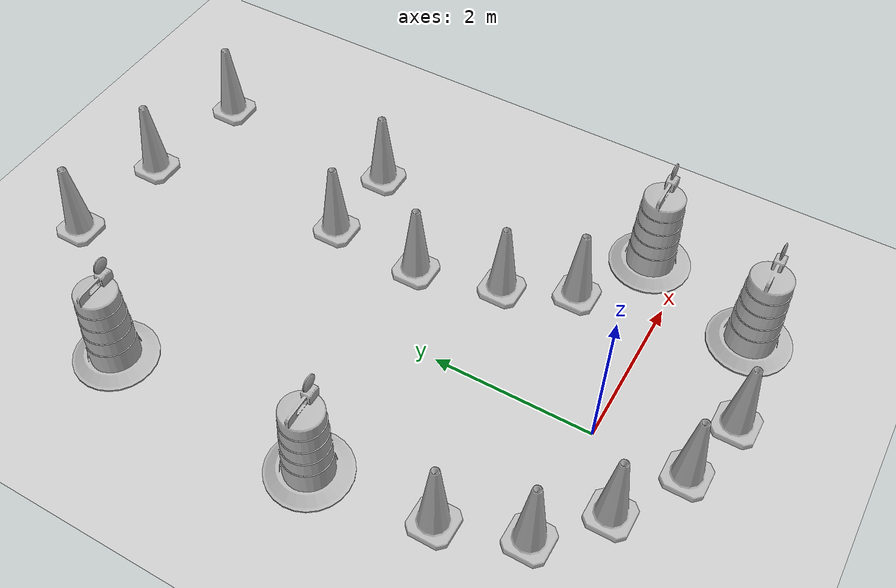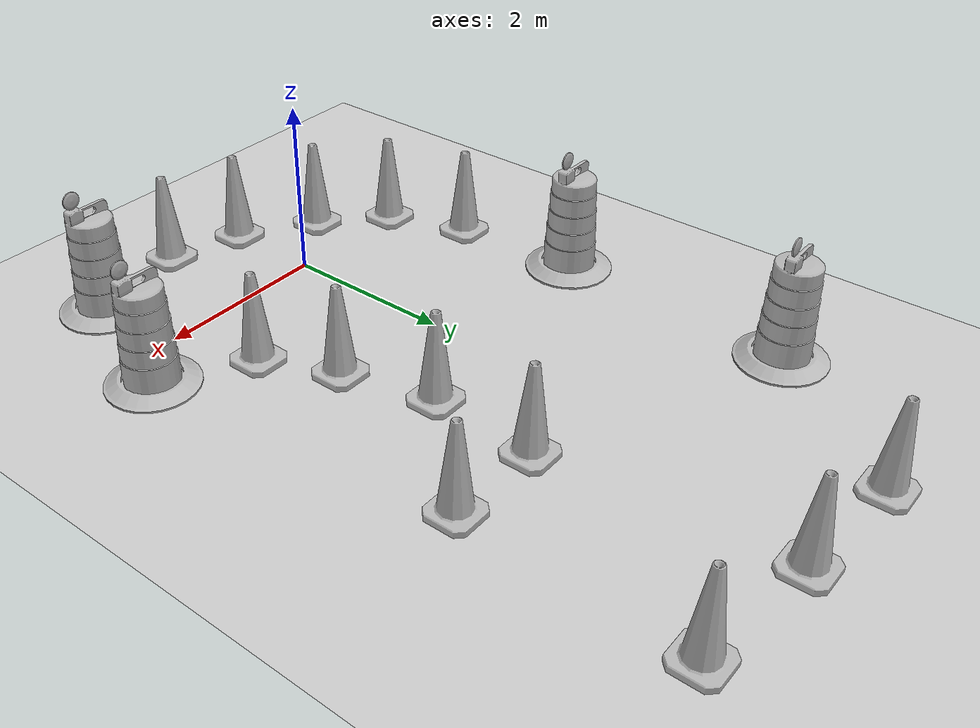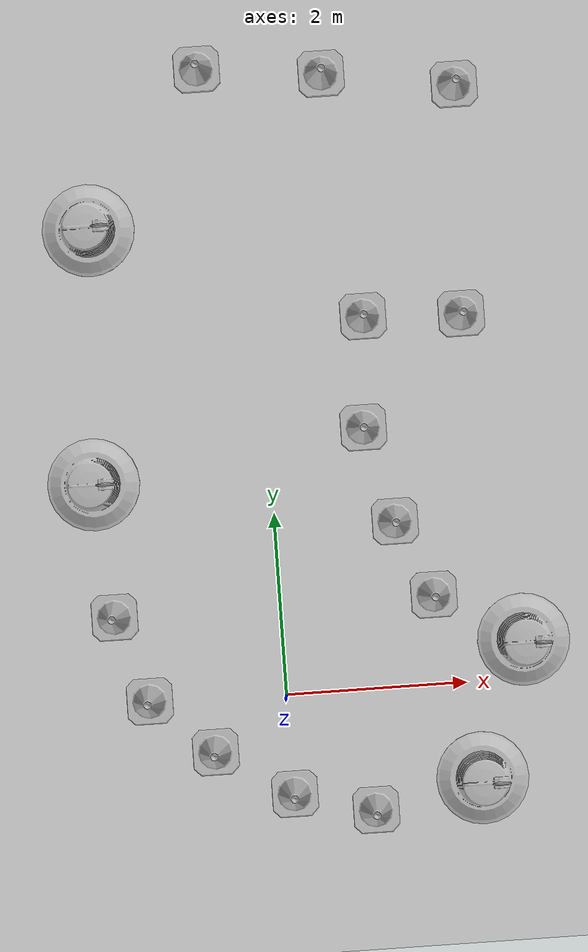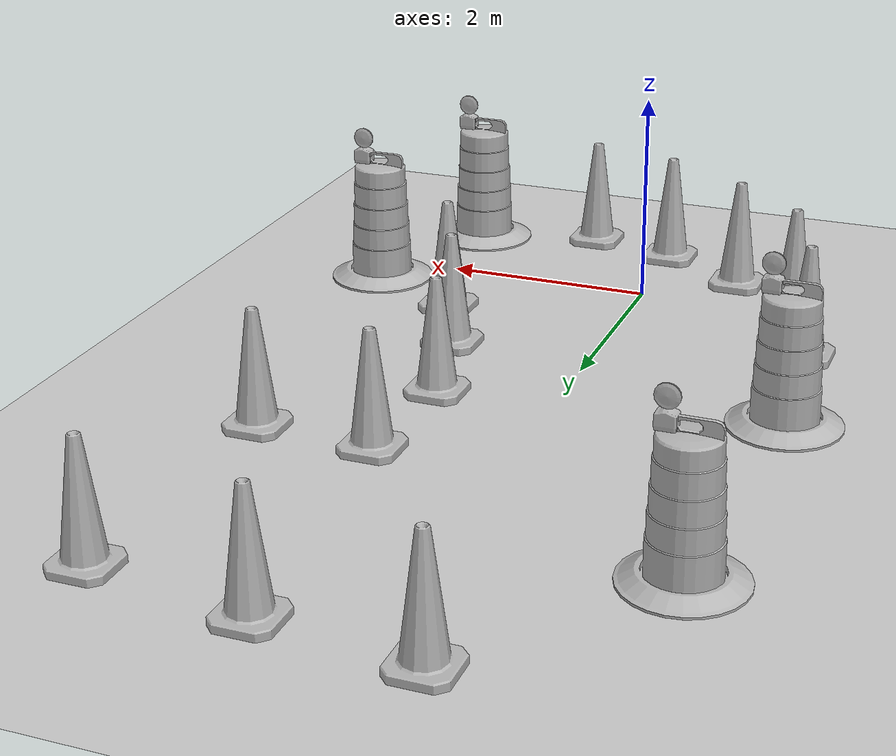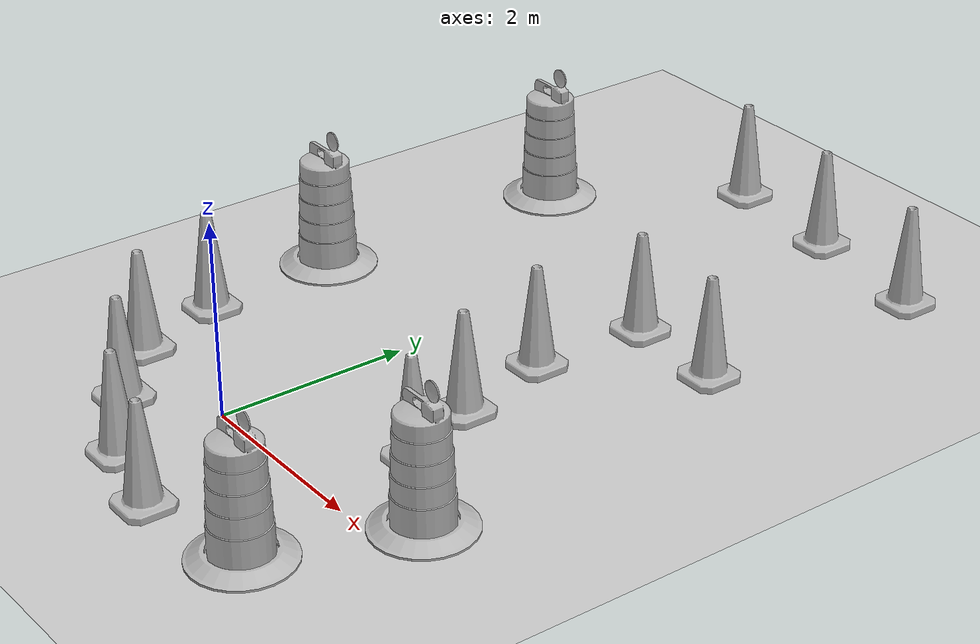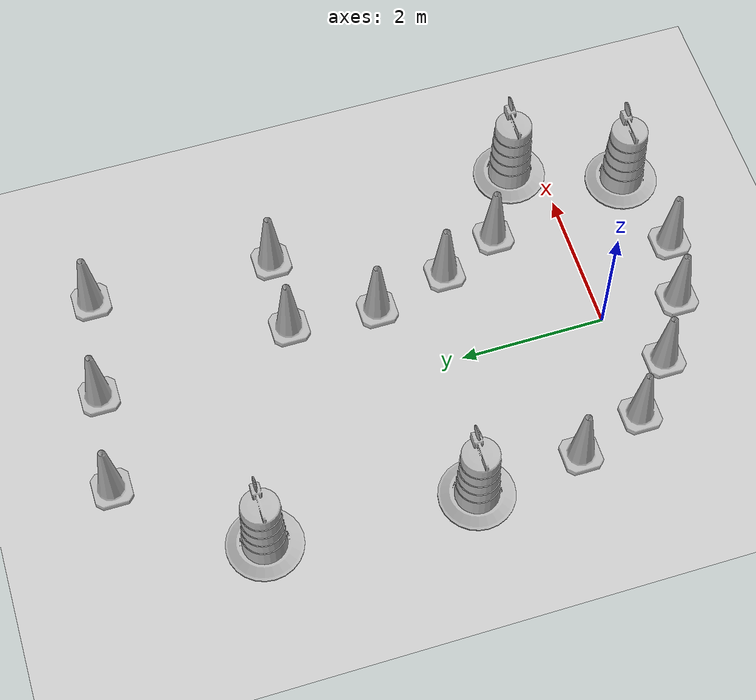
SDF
<sdf version="1.7">
 <world name="default">
  <light name="sun" type="directional">
   <pose>0 0 10 0 -0 0</pose>
   <diffuse>0.8 0.8 0.8 1</diffuse>
   <specular>0.2 0.2 0.2 1</specular>
   <attenuation>
    <range>1000</range>
    <constant>0.9</constant>
    <linear>0.01</linear>
    <quadratic>0.001</quadratic>
   </attenuation>
   <direction>-0.5 0.1 -0.9</direction>
   <spot><inner_angle>0</inner_angle><outer_angle>0</outer_angle><falloff>0</falloff></spot>
  </light>
  <model name="ground_plane">
   <static>1</static>
   <link name="link">
    <collision name="collision">
     <geometry><plane><normal>0 0 1</normal><size>100 100</size></plane></geometry>
     <surface>
      <contact><collide_bitmask>65535</collide_bitmask></contact>
      <friction><ode><mu>100</mu><mu2>50</mu2></ode></friction>
     </surface>
    </collision>
    <visual name="visual">
     <cast_shadows>0</cast_shadows>
     <geometry><plane><normal>0 0 1</normal><size>100 100</size></plane></geometry>
     <material>
      <script><uri>file://media/materials/scripts/gazebo.material</uri><name>Gazebo/Grey</name></script>
     </material>
    </visual>
   </link>
  </model>
  <gravity>0 0 -9.8</gravity>
  <magnetic_field>6e-06 2.3e-05 -4.2e-05</magnetic_field>
  <atmosphere type="adiabatic"/>
  <physics type="ode">
   <max_step_size>0.001</max_step_size>
   <real_time_factor>1</real_time_factor>
   <real_time_update_rate>1000</real_time_update_rate>
  </physics>
  <scene><ambient>0.4 0.4 0.4 1</ambient><background>0.7 0.7 0.7 1</background><shadows>1</shadows></scene>
  <audio><device>default</device></audio>
  <spherical_coordinates>
   <surface_model>EARTH_WGS84</surface_model>
   <latitude_deg>0</latitude_deg>
   <longitude_deg>0</longitude_deg>
   <elevation>0</elevation>
   <heading_deg>0</heading_deg>
  </spherical_coordinates>
  <model name="Construction Barrel">
   <link name="link">
    <inertial>
     <pose>0 0 0.4 0 -0 0</pose>
     <mass>500</mass>
     <inertia><ixx>51.2096</ixx><iyy>51.2096</iyy><izz>25</izz><ixy>0</ixy><ixz>0</ixz><iyz>0</iyz></inertia>
    </inertial>
    <collision name="collision">
     <geometry><mesh><uri>model://construction_barrel/meshes/construction_barrel.dae</uri></mesh></geometry>
    </collision>
    <visual name="visual">
     <geometry><mesh><uri>model://construction_barrel/meshes/construction_barrel.dae</uri></mesh></geometry>
    </visual>
   </link>
   <pose>-1.96293 2.4529 -3e-06 0 -1.2e-05 -2.7e-05</pose>
  </model>
  <model name="Construction Barrel_0">
   <link name="link">
    <inertial>
     <pose>0 0 0.4 0 -0 0</pose>
     <mass>500</mass>
     <inertia><ixx>51.2096</ixx><iyy>51.2096</iyy><izz>25</izz><ixy>0</ixy><ixz>0</ixz><iyz>0</iyz></inertia>
    </inertial>
    <collision name="collision">
     <geometry><mesh><uri>model://construction_barrel/meshes/construction_barrel.dae</uri></mesh></geometry>
    </collision>
    <visual name="visual">
     <geometry><mesh><uri>model://construction_barrel/meshes/construction_barrel.dae</uri></mesh></geometry>
    </visual>
   </link>
   <pose>-1.83163 5.25016 -3e-06 -0 -1.2e-05 -2.6e-05</pose>
  </model>
  <model name="Construction Cone">
   <link name="link">
    <collision name="collision">
     <geometry>
      <mesh><scale>10 10 10</scale><uri>model://construction_cone/meshes/construction_cone.dae</uri></mesh>
     </geometry>
    </collision>
    <visual name="visual">
     <geometry>
      <mesh><scale>10 10 10</scale><uri>model://construction_cone/meshes/construction_cone.dae</uri></mesh>
     </geometry>
    </visual>
    <inertial>
     <inertia><ixx>1</ixx><ixy>0</ixy><ixz>0</ixz><iyy>1</iyy><iyz>0</iyz><izz>1</izz></inertia>
     <mass>1</mass>
    </inertial>
   </link>
   <pose>-0.52125 6.93877 -0 0 -0 0</pose>
  </model>
  <model name="Construction Cone_0">
   <link name="link">
    <collision name="collision">
     <geometry>
      <mesh><scale>10 10 10</scale><uri>model://construction_cone/meshes/construction_cone.dae</uri></mesh>
     </geometry>
    </collision>
    <visual name="visual">
     <geometry>
      <mesh><scale>10 10 10</scale><uri>model://construction_cone/meshes/construction_cone.dae</uri></mesh>
     </geometry>
    </visual>
    <inertial>
     <inertia><ixx>1</ixx><ixy>0</ixy><ixz>0</ixz><iyy>1</iyy><iyz>0</iyz><izz>1</izz></inertia>
     <mass>1</mass>
    </inertial>
   </link>
   <pose>0.84512 6.79934 0 -0 -0 -0</pose>
  </model>
  <model name="Construction Cone_1">
   <link name="link">
    <collision name="collision">
     <geometry>
      <mesh><scale>10 10 10</scale><uri>model://construction_cone/meshes/construction_cone.dae</uri></mesh>
     </geometry>
    </collision>
    <visual name="visual">
     <geometry>
      <mesh><scale>10 10 10</scale><uri>model://construction_cone/meshes/construction_cone.dae</uri></mesh>
     </geometry>
    </visual>
    <inertial>
     <inertia><ixx>1</ixx><ixy>0</ixy><ixz>0</ixz><iyy>1</iyy><iyz>0</iyz><izz>1</izz></inertia>
     <mass>1</mass>
    </inertial>
   </link>
   <pose>2.29931 6.58392 -0 0 -1e-06 0</pose>
  </model>
  <model name="Construction Cone_2">
   <link name="link">
    <collision name="collision">
     <geometry>
      <mesh><scale>10 10 10</scale><uri>model://construction_cone/meshes/construction_cone.dae</uri></mesh>
     </geometry>
    </collision>
    <visual name="visual">
     <geometry>
      <mesh><scale>10 10 10</scale><uri>model://construction_cone/meshes/construction_cone.dae</uri></mesh>
     </geometry>
    </visual>
    <inertial>
     <inertia><ixx>1</ixx><ixy>0</ixy><ixz>0</ixz><iyy>1</iyy><iyz>0</iyz><izz>1</izz></inertia>
     <mass>1</mass>
    </inertial>
   </link>
   <pose>2.20614 4.0594 -1e-05 0 -0 0</pose>
  </model>
  <model name="Construction Cone_3">
   <link name="link">
    <collision name="collision">
     <geometry>
      <mesh><scale>10 10 10</scale><uri>model://construction_cone/meshes/construction_cone.dae</uri></mesh>
     </geometry>
    </collision>
    <visual name="visual">
     <geometry>
      <mesh><scale>10 10 10</scale><uri>model://construction_cone/meshes/construction_cone.dae</uri></mesh>
     </geometry>
    </visual>
    <inertial>
     <inertia><ixx>1</ixx><ixy>0</ixy><ixz>0</ixz><iyy>1</iyy><iyz>0</iyz><izz>1</izz></inertia>
     <mass>1</mass>
    </inertial>
   </link>
   <pose>1.12377 4.10253 -0 0 -1e-06 0</pose>
  </model>
  <model name="Construction Cone_4">
   <link name="link">
    <collision name="collision">
     <geometry>
      <mesh><scale>10 10 10</scale><uri>model://construction_cone/meshes/construction_cone.dae</uri></mesh>
     </geometry>
    </collision>
    <visual name="visual">
     <geometry>
      <mesh><scale>10 10 10</scale><uri>model://construction_cone/meshes/construction_cone.dae</uri></mesh>
     </geometry>
    </visual>
    <inertial>
     <inertia><ixx>1</ixx><ixy>0</ixy><ixz>0</ixz><iyy>1</iyy><iyz>0</iyz><izz>1</izz></inertia>
     <mass>1</mass>
    </inertial>
   </link>
   <pose>1.04469 2.87983 -0 0 -1e-06 0</pose>
  </model>
  <model name="Construction Cone_5">
   <link name="link">
    <collision name="collision">
     <geometry>
      <mesh><scale>10 10 10</scale><uri>model://construction_cone/meshes/construction_cone.dae</uri></mesh>
     </geometry>
    </collision>
    <visual name="visual">
     <geometry>
      <mesh><scale>10 10 10</scale><uri>model://construction_cone/meshes/construction_cone.dae</uri></mesh>
     </geometry>
    </visual>
    <inertial>
     <inertia><ixx>1</ixx><ixy>0</ixy><ixz>0</ixz><iyy>1</iyy><iyz>0</iyz><izz>1</izz></inertia>
     <mass>1</mass>
    </inertial>
   </link>
   <pose>1.3219 1.82576 -0 0 -0 0</pose>
  </model>
  <model name="Construction Cone_6">
   <link name="link">
    <collision name="collision">
     <geometry>
      <mesh><scale>10 10 10</scale><uri>model://construction_cone/meshes/construction_cone.dae</uri></mesh>
     </geometry>
    </collision>
    <visual name="visual">
     <geometry>
      <mesh><scale>10 10 10</scale><uri>model://construction_cone/meshes/construction_cone.dae</uri></mesh>
     </geometry>
    </visual>
    <inertial>
     <inertia><ixx>1</ixx><ixy>0</ixy><ixz>0</ixz><iyy>1</iyy><iyz>0</iyz><izz>1</izz></inertia>
     <mass>1</mass>
    </inertial>
   </link>
   <pose>1.69408 0.990137 -0 0 -1e-06 0</pose>
  </model>
  <model name="Construction Cone_7">
   <link name="link">
    <collision name="collision">
     <geometry>
      <mesh><scale>10 10 10</scale><uri>model://construction_cone/meshes/construction_cone.dae</uri></mesh>
     </geometry>
    </collision>
    <visual name="visual">
     <geometry>
      <mesh><scale>10 10 10</scale><uri>model://construction_cone/meshes/construction_cone.dae</uri></mesh>
     </geometry>
    </visual>
    <inertial>
     <inertia><ixx>1</ixx><ixy>0</ixy><ixz>0</ixz><iyy>1</iyy><iyz>0</iyz><izz>1</izz></inertia>
     <mass>1</mass>
    </inertial>
   </link>
   <pose>-1.83285 0.978029 -0 0 -1e-06 0</pose>
  </model>
  <model name="Construction Cone_8">
   <link name="link">
    <collision name="collision">
     <geometry>
      <mesh><scale>10 10 10</scale><uri>model://construction_cone/meshes/construction_cone.dae</uri></mesh>
     </geometry>
    </collision>
    <visual name="visual">
     <geometry>
      <mesh><scale>10 10 10</scale><uri>model://construction_cone/meshes/construction_cone.dae</uri></mesh>
     </geometry>
    </visual>
    <inertial>
     <inertia><ixx>1</ixx><ixy>0</ixy><ixz>0</ixz><iyy>1</iyy><iyz>0</iyz><izz>1</izz></inertia>
     <mass>1</mass>
    </inertial>
   </link>
   <pose>-1.50808 0.029896 -0 0 -1e-06 0</pose>
  </model>
  <model name="Construction Cone_9">
   <link name="link">
    <collision name="collision">
     <geometry>
      <mesh><scale>10 10 10</scale><uri>model://construction_cone/meshes/construction_cone.dae</uri></mesh>
     </geometry>
    </collision>
    <visual name="visual">
     <geometry>
      <mesh><scale>10 10 10</scale><uri>model://construction_cone/meshes/construction_cone.dae</uri></mesh>
     </geometry>
    </visual>
    <inertial>
     <inertia><ixx>1</ixx><ixy>0</ixy><ixz>0</ixz><iyy>1</iyy><iyz>0</iyz><izz>1</izz></inertia>
     <mass>1</mass>
    </inertial>
   </link>
   <pose>-0.82224 -0.577338 -1e-05 0 -0 0</pose>
  </model>
  <model name="Construction Cone_10">
   <link name="link">
    <collision name="collision">
     <geometry>
      <mesh><scale>10 10 10</scale><uri>model://construction_cone/meshes/construction_cone.dae</uri></mesh>
     </geometry>
    </collision>
    <visual name="visual">
     <geometry>
      <mesh><scale>10 10 10</scale><uri>model://construction_cone/meshes/construction_cone.dae</uri></mesh>
     </geometry>
    </visual>
    <inertial>
     <inertia><ixx>1</ixx><ixy>0</ixy><ixz>0</ixz><iyy>1</iyy><iyz>0</iyz><izz>1</izz></inertia>
     <mass>1</mass>
    </inertial>
   </link>
   <pose>0.018014 -1.09436 -0 0 -1e-06 0</pose>
  </model>
  <model name="Construction Cone_11">
   <link name="link">
    <collision name="collision">
     <geometry>
      <mesh><scale>10 10 10</scale><uri>model://construction_cone/meshes/construction_cone.dae</uri></mesh>
     </geometry>
    </collision>
    <visual name="visual">
     <geometry>
      <mesh><scale>10 10 10</scale><uri>model://construction_cone/meshes/construction_cone.dae</uri></mesh>
     </geometry>
    </visual>
    <inertial>
     <inertia><ixx>1</ixx><ixy>0</ixy><ixz>0</ixz><iyy>1</iyy><iyz>0</iyz><izz>1</izz></inertia>
     <mass>1</mass>
    </inertial>
   </link>
   <pose>0.899645 -1.331 -0 0 -0 0</pose>
  </model>
  <model name="Construction Barrel_1">
   <link name="link">
    <inertial>
     <pose>0 0 0.4 0 -0 0</pose>
     <mass>500</mass>
     <inertia><ixx>51.2096</ixx><iyy>51.2096</iyy><izz>25</izz><ixy>0</ixy><ixz>0</ixz><iyz>0</iyz></inertia>
    </inertial>
    <collision name="collision">
     <geometry><mesh><uri>model://construction_barrel/meshes/construction_barrel.dae</uri></mesh></geometry>
    </collision>
    <visual name="visual">
     <geometry><mesh><uri>model://construction_barrel/meshes/construction_barrel.dae</uri></mesh></geometry>
    </visual>
   </link>
   <pose>2.09471 -1.05934 -0 0 0 -6e-06</pose>
  </model>
  <model name="Construction Barrel_2">
   <link name="link">
    <inertial>
     <pose>0 0 0.4 0 -0 0</pose>
     <mass>500</mass>
     <inertia><ixx>51.2096</ixx><iyy>51.2096</iyy><izz>25</izz><ixy>0</ixy><ixz>0</ixz><iyz>0</iyz></inertia>
    </inertial>
    <collision name="collision">
     <geometry><mesh><uri>model://construction_barrel/meshes/construction_barrel.dae</uri></mesh></geometry>
    </collision>
    <visual name="visual">
     <geometry><mesh><uri>model://construction_barrel/meshes/construction_barrel.dae</uri></mesh></geometry>
    </visual>
   </link>
   <pose>2.64762 0.431317 -1e-06 -3e-06 -1e-06 -4e-06</pose>
  </model>
 </world>
</sdf>
